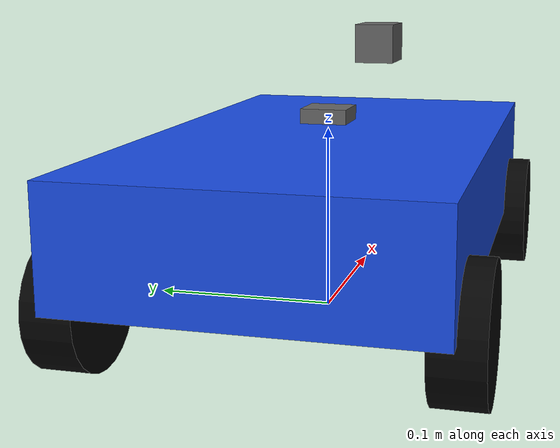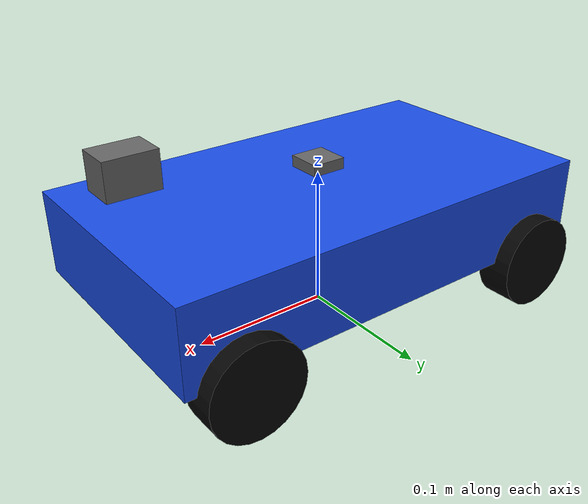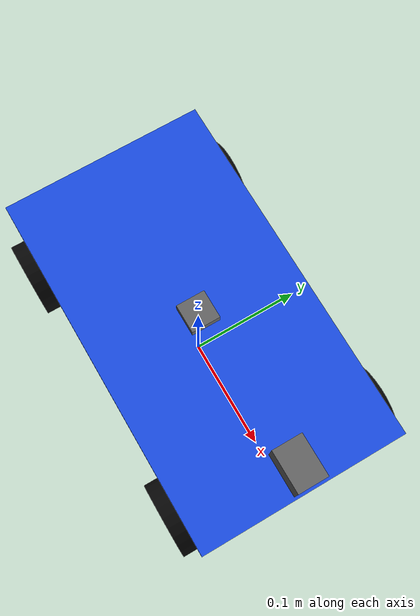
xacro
<?xml version="1.0"?>
<robot xmlns:xacro="http://www.ros.org/wiki/xacro" name="donkey_car">

  <xacro:include filename="$(find donkey_description)/urdf/donkey_car.urdf.xacro" />
  <xacro:include filename="$(find donkey_sim)/urdf/sim_camera.xacro" />
  <xacro:include filename="$(find donkey_sim)/urdf/sim_imu.xacro" />
  <xacro:include filename="$(find donkey_sim)/urdf/sim_ground_truth.xacro" />
  <xacro:include filename="$(find donkey_sim)/urdf/ros2_control.xacro"/>

</robot>

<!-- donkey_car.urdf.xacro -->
<robot xmlns:xacro="http://www.ros.org/wiki/xacro" name="donkey_car">

  <xacro:include filename="$(find donkey_description)/urdf/donkey_base.xacro" />
  <xacro:include filename="$(find donkey_description)/urdf/sensors/camera.xacro" />
  <xacro:include filename="$(find donkey_description)/urdf/sensors/imu.xacro" />

  <xacro:donkey_camera parent="base_link" xyz="0.14 0 0.07" rpy="0 0 0" />
  <xacro:donkey_imu    parent="base_link" xyz="0.0 0 0.04"  rpy="0 0 0" />

</robot>

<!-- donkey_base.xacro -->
<robot xmlns:xacro="http://www.ros.org/wiki/xacro">

  <xacro:property name="chassis_length" value="0.32"/>
  <xacro:property name="chassis_width"  value="0.18"/>
  <xacro:property name="chassis_height" value="0.06"/>

  <xacro:property name="wheel_radius" value="0.033"/>
  <xacro:property name="wheel_width"  value="0.025"/>

  <xacro:property name="front_x" value="0.12"/>
  <xacro:property name="rear_x"  value="-0.12"/>
  <xacro:property name="left_y"  value="0.09"/>
  <xacro:property name="right_y" value="-0.09"/>

  <xacro:property name="chassis_clearance" value="0.015"/>
  <xacro:property name="base_z" value="${wheel_radius + 0.035}"/>

  <material name="black"><color rgba="0.02 0.02 0.02 1.0"/></material>
  <material name="gray"><color rgba="0.4 0.4 0.4 1.0"/></material>
  <material name="blue"><color rgba="0.1 0.3 0.9 1.0"/></material>

  <link name="base_footprint"/>

  <joint name="base_footprint_to_base_link" type="fixed">
    <parent link="base_footprint"/>
    <child link="base_link"/>
    <origin xyz="0 0 ${base_z}" rpy="0 0 0"/>
  </joint>

  <link name="base_link">
    <visual>
      <origin xyz="0 0 0" rpy="0 0 0"/>
      <geometry><box size="${chassis_length} ${chassis_width} ${chassis_height}"/></geometry>
      <material name="blue"/>
    </visual>
    <collision>
      <origin xyz="0 0 0" rpy="0 0 0"/>
      <geometry><box size="${chassis_length} ${chassis_width} ${chassis_height}"/></geometry>
    </collision>
    <inertial>
      <mass value="1.5"/>
      <origin xyz="0 0 0"/>
      <inertia ixx="0.01" ixy="0.0" ixz="0.0" iyy="0.02" iyz="0.0" izz="0.02"/>
    </inertial>
  </link>

  <gazebo reference="base_link">
    <material>Gazebo/Blue</material>
  </gazebo>

  <xacro:macro name="wheel" params="name parent x y steerable">

    <xacro:if value="${steerable}">
      <link name="${name}_steer_link">
        <visual>
          <geometry><box size="0.02 0.02 0.02"/></geometry>
          <material name="gray"/>
        </visual>
        <collision>
          <geometry><box size="0.02 0.02 0.02"/></geometry>
        </collision>
        <inertial>
          <mass value="0.05"/> <origin xyz="0 0 0"/>
          <inertia ixx="0.00001" ixy="0.0" ixz="0.0" iyy="0.00001" iyz="0.0" izz="0.00001"/>
        </inertial>
      </link>

      <joint name="${name}_steer_joint" type="revolute">
        <parent link="${parent}"/>
        <child link="${name}_steer_link"/>
        <origin xyz="${x} ${y} -0.035" rpy="0 0 0"/>
        <axis xyz="0 0 1"/>
        <limit lower="-0.6" upper="0.6" effort="10.0" velocity="5.0"/>
      </joint>

      <link name="${name}_wheel_link">
        <visual>
          <origin xyz="0 0 0" rpy="1.5708 0 0"/>
          <geometry><cylinder radius="${wheel_radius}" length="${wheel_width}"/></geometry>
          <material name="black"/>
        </visual>
        <collision>
          <origin xyz="0 0 0" rpy="1.5708 0 0"/>
          <geometry><cylinder radius="${wheel_radius}" length="${wheel_width}"/></geometry>
        </collision>
        <inertial>
          <mass value="0.05"/>
          <origin xyz="0 0 0"/>
          <inertia ixx="0.00005" ixy="0.0" ixz="0.0" iyy="0.00005" iyz="0.0" izz="0.00005"/>
        </inertial>
      </link>

      <joint name="${name}_wheel_joint" type="continuous">
        <parent link="${name}_steer_link"/>
        <child link="${name}_wheel_link"/>
        <origin xyz="0 0 0" rpy="0 0 0"/>
        <axis xyz="0 1 0"/>
        <limit effort="5.0" velocity="50.0"/>
      </joint>
    </xacro:if>

    <xacro:unless value="${steerable}">
      <link name="${name}_wheel_link">
        <visual>
          <origin xyz="0 0 0" rpy="1.5708 0 0"/>
          <geometry><cylinder radius="${wheel_radius}" length="${wheel_width}"/></geometry>
          <material name="black"/>
        </visual>
        <collision>
          <origin xyz="0 0 0" rpy="1.5708 0 0"/>
          <geometry><cylinder radius="${wheel_radius}" length="${wheel_width}"/></geometry>
        </collision>
        <inertial>
          <mass value="0.05"/>
          <origin xyz="0 0 0"/>
          <inertia ixx="0.00005" ixy="0.0" ixz="0.0" iyy="0.00005" iyz="0.0" izz="0.00005"/>
        </inertial>
      </link>

      <joint name="${name}_wheel_joint" type="continuous">
        <parent link="${parent}"/>
        <child link="${name}_wheel_link"/>
        <origin xyz="${x} ${y} -0.035" rpy="0 0 0"/>
        <axis xyz="0 1 0"/>
        <limit effort="5.0" velocity="50.0"/>
      </joint>
    </xacro:unless>

    <gazebo reference="${name}_wheel_link">
      <material>Gazebo/DarkGrey</material>
      <mu1 value="1.5"/>
      <mu2 value="1.5"/>
      <kp value="1000000.0"/>
      <kd value="1.0"/>
    </gazebo>
  </xacro:macro>

  <xacro:wheel name="front_left"  parent="base_link" x="${front_x}" y="${left_y}"  steerable="true"/>
  <xacro:wheel name="front_right" parent="base_link" x="${front_x}" y="${right_y}" steerable="true"/>
  <xacro:wheel name="rear_left"   parent="base_link" x="${rear_x}"  y="${left_y}"  steerable="false"/>
  <xacro:wheel name="rear_right"  parent="base_link" x="${rear_x}"  y="${right_y}" steerable="false"/>

</robot>

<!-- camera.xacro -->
<robot xmlns:xacro="http://www.ros.org/wiki/xacro">

  <xacro:macro name="donkey_camera" params="parent xyz rpy">

    <link name="camera_link">
      <visual>
        <geometry><box size="0.035 0.025 0.025"/></geometry>
        <material name="gray"/>
      </visual>
      <collision><geometry><box size="0.035 0.025 0.025"/></geometry></collision>
      <inertial>
        <mass value="0.03"/>
        <inertia ixx="0.000003" ixy="0.0" ixz="0.0" iyy="0.000005" iyz="0.0" izz="0.000006"/>
      </inertial>
    </link>

    <joint name="${parent}_to_camera" type="fixed">
      <parent link="${parent}"/>
      <child link="camera_link"/>
      <origin xyz="${xyz}" rpy="${rpy}"/>
    </joint>

    <link name="camera_optical_frame"/>
    <joint name="camera_link_to_camera_optical_frame" type="fixed">
      <parent link="camera_link"/>
      <child link="camera_optical_frame"/>
      <origin xyz="0 0 0" rpy="-1.5708 0 -1.5708"/>
    </joint>

    </xacro:macro>
</robot>

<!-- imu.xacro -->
<robot xmlns:xacro="http://www.ros.org/wiki/xacro">

  <xacro:macro name="donkey_imu" params="parent xyz rpy">

    <link name="imu_link">
      <visual>
        <origin xyz="0 0 0" rpy="0 0 0"/>
        <geometry>
          <box size="0.025 0.025 0.008"/>
        </geometry>
        <material name="gray"/>
      </visual>

      <collision>
        <origin xyz="0 0 0" rpy="0 0 0"/>
        <geometry>
          <box size="0.025 0.025 0.008"/>
        </geometry>
      </collision>

      <inertial>
        <mass value="0.01"/>
        <origin xyz="0 0 0"/>
        <inertia
          ixx="0.00000052" ixy="0.0" ixz="0.0"
          iyy="0.00000052" iyz="0.0"
          izz="0.00000104"/>
      </inertial>
    </link>

    <joint name="${parent}_to_imu" type="fixed">
      <parent link="${parent}"/>
      <child link="imu_link"/>
      <origin xyz="${xyz}" rpy="${rpy}"/>
    </joint>

  </xacro:macro>
</robot>
